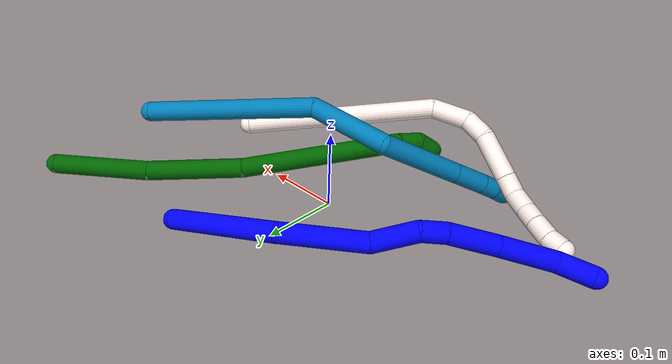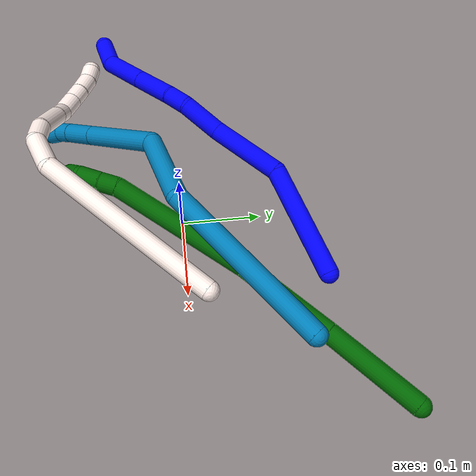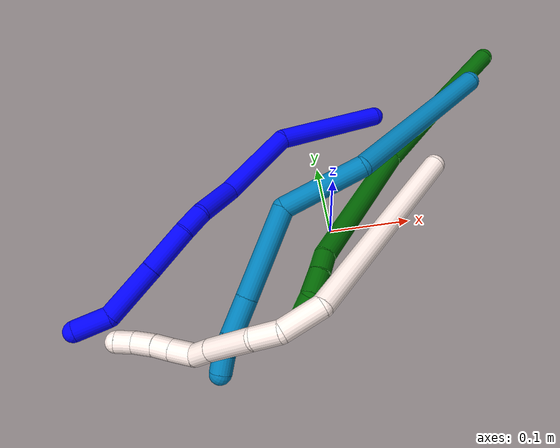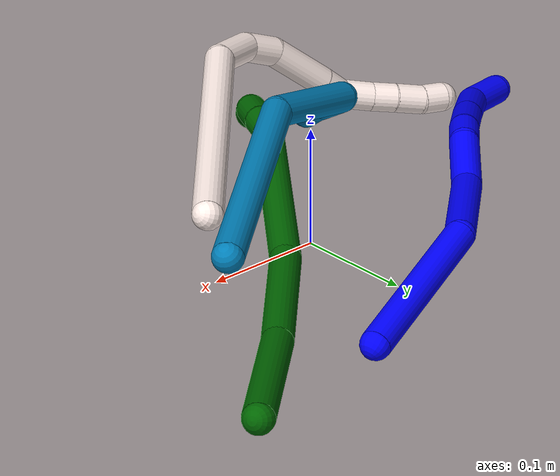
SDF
<sdf version="1.7">
 <world name="default">
  <model name="1">
   <static>0</static>
   <link name="1">
    <collision name="collision-cylinder-e_1_1_4">
     <pose>-0.033504 0.002951 0.064799 -0.045512 -0.476762 0.011061</pose>
     <geometry><cylinder><radius>0.0125</radius><length>0.146016</length></cylinder></geometry>
     <surface>
      <friction><ode><mu>1.16</mu><mu2>1.16</mu2><slip1>0</slip1><slip2>0</slip2></ode></friction>
      <contact><ode><kp>1e+06</kp><kd>1</kd><max_vel>0</max_vel><min_depth>0.001</min_depth></ode></contact>
     </surface>
    </collision>
    <visual name="visual-cylinder-e_1_1_4">
     <pose>-0.033504 0.002951 0.064799 -0.045512 -0.476762 0.011061</pose>
     <geometry><cylinder><radius>0.0125</radius><length>0.146016</length></cylinder></geometry>
     <material><ambient>0 0 1 1</ambient></material>
    </visual>
    <collision name="collision-cylinder-e_2_4_5">
     <pose>-0.105053 -0.006141 0.161777 0.35815 -0.83628 -0.160519</pose>
     <geometry><cylinder><radius>0.0125</radius><length>0.102526</length></cylinder></geometry>
     <surface>
      <friction><ode><mu>1.16</mu><mu2>1.16</mu2><slip1>0</slip1><slip2>0</slip2></ode></friction>
      <contact><ode><kp>1e+06</kp><kd>1</kd><max_vel>0</max_vel><min_depth>0.001</min_depth></ode></contact>
     </surface>
    </collision>
    <visual name="visual-cylinder-e_2_4_5">
     <pose>-0.105053 -0.006141 0.161777 0.35815 -0.83628 -0.160519</pose>
     <geometry><cylinder><radius>0.0125</radius><length>0.102526</length></cylinder></geometry>
     <material><ambient>0 0 1 1</ambient></material>
    </visual>
    <collision name="collision-cylinder-e_3_5_6">
     <pose>-0.156096 -0.029833 0.215108 0.503329 -0.493808 -0.129429</pose>
     <geometry><cylinder><radius>0.0125</radius><length>0.05485</length></cylinder></geometry>
     <surface>
      <friction><ode><mu>1.16</mu><mu2>1.16</mu2><slip1>0</slip1><slip2>0</slip2></ode></friction>
      <contact><ode><kp>1e+06</kp><kd>1</kd><max_vel>0</max_vel><min_depth>0.001</min_depth></ode></contact>
     </surface>
    </collision>
    <visual name="visual-cylinder-e_3_5_6">
     <pose>-0.156096 -0.029833 0.215108 0.503329 -0.493808 -0.129429</pose>
     <geometry><cylinder><radius>0.0125</radius><length>0.05485</length></cylinder></geometry>
     <material><ambient>0 0 1 1</ambient></material>
    </visual>
    <collision name="collision-cylinder-e_4_6_7">
     <pose>-0.180154 -0.045778 0.245358 0.441328 -0.832662 -0.197729</pose>
     <geometry><cylinder><radius>0.0125</radius><length>0.029899</length></cylinder></geometry>
     <surface>
      <friction><ode><mu>1.16</mu><mu2>1.16</mu2><slip1>0</slip1><slip2>0</slip2></ode></friction>
      <contact><ode><kp>1e+06</kp><kd>1</kd><max_vel>0</max_vel><min_depth>0.001</min_depth></ode></contact>
     </surface>
    </collision>
    <visual name="visual-cylinder-e_4_6_7">
     <pose>-0.180154 -0.045778 0.245358 0.441328 -0.832662 -0.197729</pose>
     <geometry><cylinder><radius>0.0125</radius><length>0.029899</length></cylinder></geometry>
     <material><ambient>0 0 1 1</ambient></material>
    </visual>
    <collision name="collision-cylinder-e_5_7_8">
     <pose>-0.215557 -0.055186 0.269197 0.333682 -1.0008 -0.183659</pose>
     <geometry><cylinder><radius>0.0125</radius><length>0.057833</length></cylinder></geometry>
     <surface>
      <friction><ode><mu>1.16</mu><mu2>1.16</mu2><slip1>0</slip1><slip2>0</slip2></ode></friction>
      <contact><ode><kp>1e+06</kp><kd>1</kd><max_vel>0</max_vel><min_depth>0.001</min_depth></ode></contact>
     </surface>
    </collision>
    <visual name="visual-cylinder-e_5_7_8">
     <pose>-0.215557 -0.055186 0.269197 0.333682 -1.0008 -0.183659</pose>
     <geometry><cylinder><radius>0.0125</radius><length>0.057833</length></cylinder></geometry>
     <material><ambient>0 0 1 1</ambient></material>
    </visual>
    <collision name="collision-cylinder-e_6_8_9">
     <pose>-0.268746 -0.065478 0.301105 0.293155 -1.01464 -0.163758</pose>
     <geometry><cylinder><radius>0.0125</radius><length>0.067925</length></cylinder></geometry>
     <surface>
      <friction><ode><mu>1.16</mu><mu2>1.16</mu2><slip1>0</slip1><slip2>0</slip2></ode></friction>
      <contact><ode><kp>1e+06</kp><kd>1</kd><max_vel>0</max_vel><min_depth>0.001</min_depth></ode></contact>
     </surface>
    </collision>
    <visual name="visual-cylinder-e_6_8_9">
     <pose>-0.268746 -0.065478 0.301105 0.293155 -1.01464 -0.163758</pose>
     <geometry><cylinder><radius>0.0125</radius><length>0.067925</length></cylinder></geometry>
     <material><ambient>0 0 1 1</ambient></material>
    </visual>
    <collision name="collision-cylinder-e_7_9_2">
     <pose>-0.310732 -0.066152 0.333311 -0.291126 -0.696875 0.106407</pose>
     <geometry><cylinder><radius>0.0125</radius><length>0.040951</length></cylinder></geometry>
     <surface>
      <friction><ode><mu>1.16</mu><mu2>1.16</mu2><slip1>0</slip1><slip2>0</slip2></ode></friction>
      <contact><ode><kp>1e+06</kp><kd>1</kd><max_vel>0</max_vel><min_depth>0.001</min_depth></ode></contact>
     </surface>
    </collision>
    <visual name="visual-cylinder-e_7_9_2">
     <pose>-0.310732 -0.066152 0.333311 -0.291126 -0.696875 0.106407</pose>
     <geometry><cylinder><radius>0.0125</radius><length>0.040951</length></cylinder></geometry>
     <material><ambient>0 0 1 1</ambient></material>
    </visual>
    <collision name="collision-sphere-2">
     <pose>-0.323874 -0.061645 0.348352 0 -0 0</pose>
     <geometry><sphere><radius>0.0125</radius></sphere></geometry>
     <surface>
      <friction><ode><mu>1.16</mu><mu2>1.16</mu2><slip1>0</slip1><slip2>0</slip2></ode></friction>
      <contact><ode><kp>1e+06</kp><kd>1</kd><max_vel>0</max_vel><min_depth>0.001</min_depth></ode></contact>
     </surface>
    </collision>
    <visual name="visual-sphere-2">
     <pose>-0.323874 -0.061645 0.348352 0 -0 0</pose>
     <geometry><sphere><radius>0.0125</radius></sphere></geometry>
     <material><ambient>0 0 1 1</ambient></material>
    </visual>
    <collision name="collision-sphere-9">
     <pose>-0.29759 -0.070659 0.31827 0 -0 0</pose>
     <geometry><sphere><radius>0.0125</radius></sphere></geometry>
     <surface>
      <friction><ode><mu>1.16</mu><mu2>1.16</mu2><slip1>0</slip1><slip2>0</slip2></ode></friction>
      <contact><ode><kp>1e+06</kp><kd>1</kd><max_vel>0</max_vel><min_depth>0.001</min_depth></ode></contact>
     </surface>
    </collision>
    <visual name="visual-sphere-9">
     <pose>-0.29759 -0.070659 0.31827 0 -0 0</pose>
     <geometry><sphere><radius>0.0125</radius></sphere></geometry>
     <material><ambient>0 0 1 1</ambient></material>
    </visual>
    <collision name="collision-sphere-4">
     <pose>-0.067008 0.005902 0.129599 0 -0 0</pose>
     <geometry><sphere><radius>0.0125</radius></sphere></geometry>
     <surface>
      <friction><ode><mu>1.16</mu><mu2>1.16</mu2><slip1>0</slip1><slip2>0</slip2></ode></friction>
      <contact><ode><kp>1e+06</kp><kd>1</kd><max_vel>0</max_vel><min_depth>0.001</min_depth></ode></contact>
     </surface>
    </collision>
    <visual name="visual-sphere-4">
     <pose>-0.067008 0.005902 0.129599 0 -0 0</pose>
     <geometry><sphere><radius>0.0125</radius></sphere></geometry>
     <material><ambient>0 0 1 1</ambient></material>
    </visual>
    <collision name="collision-sphere-1">
     <geometry><sphere><radius>0.0125</radius></sphere></geometry>
     <surface>
      <friction><ode><mu>1.16</mu><mu2>1.16</mu2><slip1>0</slip1><slip2>0</slip2></ode></friction>
      <contact><ode><kp>1e+06</kp><kd>1</kd><max_vel>0</max_vel><min_depth>0.001</min_depth></ode></contact>
     </surface>
    </collision>
    <visual name="visual-sphere-1">
     <geometry><sphere><radius>0.0125</radius></sphere></geometry>
     <material><ambient>0 0 1 1</ambient></material>
    </visual>
    <collision name="collision-sphere-8">
     <pose>-0.239902 -0.060296 0.28394 0 -0 0</pose>
     <geometry><sphere><radius>0.0125</radius></sphere></geometry>
     <surface>
      <friction><ode><mu>1.16</mu><mu2>1.16</mu2><slip1>0</slip1><slip2>0</slip2></ode></friction>
      <contact><ode><kp>1e+06</kp><kd>1</kd><max_vel>0</max_vel><min_depth>0.001</min_depth></ode></contact>
     </surface>
    </collision>
    <visual name="visual-sphere-8">
     <pose>-0.239902 -0.060296 0.28394 0 -0 0</pose>
     <geometry><sphere><radius>0.0125</radius></sphere></geometry>
     <material><ambient>0 0 1 1</ambient></material>
    </visual>
    <collision name="collision-sphere-5">
     <pose>-0.143097 -0.018185 0.193954 0 -0 0</pose>
     <geometry><sphere><radius>0.0125</radius></sphere></geometry>
     <surface>
      <friction><ode><mu>1.16</mu><mu2>1.16</mu2><slip1>0</slip1><slip2>0</slip2></ode></friction>
      <contact><ode><kp>1e+06</kp><kd>1</kd><max_vel>0</max_vel><min_depth>0.001</min_depth></ode></contact>
     </surface>
    </collision>
    <visual name="visual-sphere-5">
     <pose>-0.143097 -0.018185 0.193954 0 -0 0</pose>
     <geometry><sphere><radius>0.0125</radius></sphere></geometry>
     <material><ambient>0 0 1 1</ambient></material>
    </visual>
    <collision name="collision-sphere-6">
     <pose>-0.169095 -0.041481 0.236262 0 -0 0</pose>
     <geometry><sphere><radius>0.0125</radius></sphere></geometry>
     <surface>
      <friction><ode><mu>1.16</mu><mu2>1.16</mu2><slip1>0</slip1><slip2>0</slip2></ode></friction>
      <contact><ode><kp>1e+06</kp><kd>1</kd><max_vel>0</max_vel><min_depth>0.001</min_depth></ode></contact>
     </surface>
    </collision>
    <visual name="visual-sphere-6">
     <pose>-0.169095 -0.041481 0.236262 0 -0 0</pose>
     <geometry><sphere><radius>0.0125</radius></sphere></geometry>
     <material><ambient>0 0 1 1</ambient></material>
    </visual>
    <collision name="collision-sphere-7">
     <pose>-0.191212 -0.050075 0.254453 0 -0 0</pose>
     <geometry><sphere><radius>0.0125</radius></sphere></geometry>
     <surface>
      <friction><ode><mu>1.16</mu><mu2>1.16</mu2><slip1>0</slip1><slip2>0</slip2></ode></friction>
      <contact><ode><kp>1e+06</kp><kd>1</kd><max_vel>0</max_vel><min_depth>0.001</min_depth></ode></contact>
     </surface>
    </collision>
    <visual name="visual-sphere-7">
     <pose>-0.191212 -0.050075 0.254453 0 -0 0</pose>
     <geometry><sphere><radius>0.0125</radius></sphere></geometry>
     <material><ambient>0 0 1 1</ambient></material>
    </visual>
    <inertial>
     <pose>-0.146113 -0.027104 0.189706 0 -0 0</pose>
     <mass>0.5</mass>
     <inertia>
      <ixx>0.000305</ixx>
      <ixy>0</ixy>
      <ixz>0</ixz>
      <iyy>0.000408</iyy>
      <iyz>0</iyz>
      <izz>0.000298</izz>
     </inertia>
    </inertial>
   </link>
   <pose>0.093104 0.173564 0.012129 -0.501531 -0.804113 0.830199</pose>
  </model>
  <model name="6">
   <static>0</static>
   <link name="6">
    <collision name="collision-cylinder-e_1_1_4">
     <pose>-0.020443 -0.011356 -0.056076 2.94179 -0.343168 -2.09278</pose>
     <geometry><cylinder><radius>0.0125</radius><length>0.121513</length></cylinder></geometry>
     <surface>
      <friction><ode><mu>1.16</mu><mu2>1.16</mu2><slip1>0</slip1><slip2>0</slip2></ode></friction>
      <contact><ode><kp>1e+06</kp><kd>1</kd><max_vel>0</max_vel><min_depth>0.001</min_depth></ode></contact>
     </surface>
    </collision>
    <visual name="visual-cylinder-e_1_1_4">
     <pose>-0.020443 -0.011356 -0.056076 2.94179 -0.343168 -2.09278</pose>
     <geometry><cylinder><radius>0.0125</radius><length>0.121513</length></cylinder></geometry>
     <material><ambient>0 0.392157 0.003922 1</ambient></material>
    </visual>
    <collision name="collision-cylinder-e_2_4_5">
     <pose>-0.067118 -0.035432 -0.165817 2.90885 -0.443965 -2.18581</pose>
     <geometry><cylinder><radius>0.0125</radius><length>0.122145</length></cylinder></geometry>
     <surface>
      <friction><ode><mu>1.16</mu><mu2>1.16</mu2><slip1>0</slip1><slip2>0</slip2></ode></friction>
      <contact><ode><kp>1e+06</kp><kd>1</kd><max_vel>0</max_vel><min_depth>0.001</min_depth></ode></contact>
     </surface>
    </collision>
    <visual name="visual-cylinder-e_2_4_5">
     <pose>-0.067118 -0.035432 -0.165817 2.90885 -0.443965 -2.18581</pose>
     <geometry><cylinder><radius>0.0125</radius><length>0.122145</length></cylinder></geometry>
     <material><ambient>0 0.392157 0.003922 1</ambient></material>
    </visual>
    <collision name="collision-cylinder-e_3_5_6">
     <pose>-0.141021 -0.074734 -0.292597 2.7929 -0.549744 -2.02501</pose>
     <geometry><cylinder><radius>0.0125</radius><length>0.182482</length></cylinder></geometry>
     <surface>
      <friction><ode><mu>1.16</mu><mu2>1.16</mu2><slip1>0</slip1><slip2>0</slip2></ode></friction>
      <contact><ode><kp>1e+06</kp><kd>1</kd><max_vel>0</max_vel><min_depth>0.001</min_depth></ode></contact>
     </surface>
    </collision>
    <visual name="visual-cylinder-e_3_5_6">
     <pose>-0.141021 -0.074734 -0.292597 2.7929 -0.549744 -2.02501</pose>
     <geometry><cylinder><radius>0.0125</radius><length>0.182482</length></cylinder></geometry>
     <material><ambient>0 0.392157 0.003922 1</ambient></material>
    </visual>
    <collision name="collision-cylinder-e_4_6_7">
     <pose>-0.193765 -0.107401 -0.373897 2.50221 -0.461609 -1.2346</pose>
     <geometry><cylinder><radius>0.0125</radius><length>0.022783</length></cylinder></geometry>
     <surface>
      <friction><ode><mu>1.16</mu><mu2>1.16</mu2><slip1>0</slip1><slip2>0</slip2></ode></friction>
      <contact><ode><kp>1e+06</kp><kd>1</kd><max_vel>0</max_vel><min_depth>0.001</min_depth></ode></contact>
     </surface>
    </collision>
    <visual name="visual-cylinder-e_4_6_7">
     <pose>-0.193765 -0.107401 -0.373897 2.50221 -0.461609 -1.2346</pose>
     <geometry><cylinder><radius>0.0125</radius><length>0.022783</length></cylinder></geometry>
     <material><ambient>0 0.392157 0.003922 1</ambient></material>
    </visual>
    <collision name="collision-cylinder-e_5_7_8">
     <pose>-0.203865 -0.121028 -0.393517 2.55861 -0.351673 -1.06928</pose>
     <geometry><cylinder><radius>0.0125</radius><length>0.029183</length></cylinder></geometry>
     <surface>
      <friction><ode><mu>1.16</mu><mu2>1.16</mu2><slip1>0</slip1><slip2>0</slip2></ode></friction>
      <contact><ode><kp>1e+06</kp><kd>1</kd><max_vel>0</max_vel><min_depth>0.001</min_depth></ode></contact>
     </surface>
    </collision>
    <visual name="visual-cylinder-e_5_7_8">
     <pose>-0.203865 -0.121028 -0.393517 2.55861 -0.351673 -1.06928</pose>
     <geometry><cylinder><radius>0.0125</radius><length>0.029183</length></cylinder></geometry>
     <material><ambient>0 0.392157 0.003922 1</ambient></material>
    </visual>
    <collision name="collision-cylinder-e_6_8_2">
     <pose>-0.207117 -0.13352 -0.414554 2.66552 0.162769 0.64858</pose>
     <geometry><cylinder><radius>0.0125</radius><length>0.021893</length></cylinder></geometry>
     <surface>
      <friction><ode><mu>1.16</mu><mu2>1.16</mu2><slip1>0</slip1><slip2>0</slip2></ode></friction>
      <contact><ode><kp>1e+06</kp><kd>1</kd><max_vel>0</max_vel><min_depth>0.001</min_depth></ode></contact>
     </surface>
    </collision>
    <visual name="visual-cylinder-e_6_8_2">
     <pose>-0.207117 -0.13352 -0.414554 2.66552 0.162769 0.64858</pose>
     <geometry><cylinder><radius>0.0125</radius><length>0.021893</length></cylinder></geometry>
     <material><ambient>0 0.392157 0.003922 1</ambient></material>
    </visual>
    <collision name="collision-sphere-2">
     <pose>-0.205343 -0.13847 -0.424155 0 -0 0</pose>
     <geometry><sphere><radius>0.0125</radius></sphere></geometry>
     <surface>
      <friction><ode><mu>1.16</mu><mu2>1.16</mu2><slip1>0</slip1><slip2>0</slip2></ode></friction>
      <contact><ode><kp>1e+06</kp><kd>1</kd><max_vel>0</max_vel><min_depth>0.001</min_depth></ode></contact>
     </surface>
    </collision>
    <visual name="visual-sphere-2">
     <pose>-0.205343 -0.13847 -0.424155 0 -0 0</pose>
     <geometry><sphere><radius>0.0125</radius></sphere></geometry>
     <material><ambient>0 0.392157 0.003922 1</ambient></material>
    </visual>
    <collision name="collision-sphere-4">
     <pose>-0.040886 -0.022711 -0.112152 0 -0 0</pose>
     <geometry><sphere><radius>0.0125</radius></sphere></geometry>
     <surface>
      <friction><ode><mu>1.16</mu><mu2>1.16</mu2><slip1>0</slip1><slip2>0</slip2></ode></friction>
      <contact><ode><kp>1e+06</kp><kd>1</kd><max_vel>0</max_vel><min_depth>0.001</min_depth></ode></contact>
     </surface>
    </collision>
    <visual name="visual-sphere-4">
     <pose>-0.040886 -0.022711 -0.112152 0 -0 0</pose>
     <geometry><sphere><radius>0.0125</radius></sphere></geometry>
     <material><ambient>0 0.392157 0.003922 1</ambient></material>
    </visual>
    <collision name="collision-sphere-1">
     <geometry><sphere><radius>0.0125</radius></sphere></geometry>
     <surface>
      <friction><ode><mu>1.16</mu><mu2>1.16</mu2><slip1>0</slip1><slip2>0</slip2></ode></friction>
      <contact><ode><kp>1e+06</kp><kd>1</kd><max_vel>0</max_vel><min_depth>0.001</min_depth></ode></contact>
     </surface>
    </collision>
    <visual name="visual-sphere-1">
     <geometry><sphere><radius>0.0125</radius></sphere></geometry>
     <material><ambient>0 0.392157 0.003922 1</ambient></material>
    </visual>
    <collision name="collision-sphere-8">
     <pose>-0.208891 -0.128569 -0.404953 0 -0 0</pose>
     <geometry><sphere><radius>0.0125</radius></sphere></geometry>
     <surface>
      <friction><ode><mu>1.16</mu><mu2>1.16</mu2><slip1>0</slip1><slip2>0</slip2></ode></friction>
      <contact><ode><kp>1e+06</kp><kd>1</kd><max_vel>0</max_vel><min_depth>0.001</min_depth></ode></contact>
     </surface>
    </collision>
    <visual name="visual-sphere-8">
     <pose>-0.208891 -0.128569 -0.404953 0 -0 0</pose>
     <geometry><sphere><radius>0.0125</radius></sphere></geometry>
     <material><ambient>0 0.392157 0.003922 1</ambient></material>
    </visual>
    <collision name="collision-sphere-5">
     <pose>-0.09335 -0.048152 -0.219482 0 -0 0</pose>
     <geometry><sphere><radius>0.0125</radius></sphere></geometry>
     <surface>
      <friction><ode><mu>1.16</mu><mu2>1.16</mu2><slip1>0</slip1><slip2>0</slip2></ode></friction>
      <contact><ode><kp>1e+06</kp><kd>1</kd><max_vel>0</max_vel><min_depth>0.001</min_depth></ode></contact>
     </surface>
    </collision>
    <visual name="visual-sphere-5">
     <pose>-0.09335 -0.048152 -0.219482 0 -0 0</pose>
     <geometry><sphere><radius>0.0125</radius></sphere></geometry>
     <material><ambient>0 0.392157 0.003922 1</ambient></material>
    </visual>
    <collision name="collision-sphere-6">
     <pose>-0.188691 -0.101315 -0.365713 0 -0 0</pose>
     <geometry><sphere><radius>0.0125</radius></sphere></geometry>
     <surface>
      <friction><ode><mu>1.16</mu><mu2>1.16</mu2><slip1>0</slip1><slip2>0</slip2></ode></friction>
      <contact><ode><kp>1e+06</kp><kd>1</kd><max_vel>0</max_vel><min_depth>0.001</min_depth></ode></contact>
     </surface>
    </collision>
    <visual name="visual-sphere-6">
     <pose>-0.188691 -0.101315 -0.365713 0 -0 0</pose>
     <geometry><sphere><radius>0.0125</radius></sphere></geometry>
     <material><ambient>0 0.392157 0.003922 1</ambient></material>
    </visual>
    <collision name="collision-sphere-7">
     <pose>-0.198838 -0.113486 -0.382082 0 -0 0</pose>
     <geometry><sphere><radius>0.0125</radius></sphere></geometry>
     <surface>
      <friction><ode><mu>1.16</mu><mu2>1.16</mu2><slip1>0</slip1><slip2>0</slip2></ode></friction>
      <contact><ode><kp>1e+06</kp><kd>1</kd><max_vel>0</max_vel><min_depth>0.001</min_depth></ode></contact>
     </surface>
    </collision>
    <visual name="visual-sphere-7">
     <pose>-0.198838 -0.113486 -0.382082 0 -0 0</pose>
     <geometry><sphere><radius>0.0125</radius></sphere></geometry>
     <material><ambient>0 0.392157 0.003922 1</ambient></material>
    </visual>
    <inertial>
     <pose>-0.102629 -0.056495 -0.21908 0 -0 0</pose>
     <mass>0.5</mass>
     <inertia>
      <ixx>-0.000997</ixx>
      <ixy>0</ixy>
      <ixz>0</ixz>
      <iyy>-0.000172</iyy>
      <iyz>0</iyz>
      <izz>0.000571</izz>
     </inertia>
    </inertial>
   </link>
   <pose>0.26603 0.235806 0.041635 0.878159 1.0946 1.36115</pose>
  </model>
  <model name="9">
   <static>0</static>
   <link name="9">
    <collision name="collision-cylinder-e_1_1_4">
     <pose>-0.053043 -0.079733 -0.046126 2.09526 -0.522468 -0.86807</pose>
     <geometry><cylinder><radius>0.0125</radius><length>0.212589</length></cylinder></geometry>
     <surface>
      <friction><ode><mu>1.16</mu><mu2>1.16</mu2><slip1>0</slip1><slip2>0</slip2></ode></friction>
      <contact><ode><kp>1e+06</kp><kd>1</kd><max_vel>0</max_vel><min_depth>0.001</min_depth></ode></contact>
     </surface>
    </collision>
    <visual name="visual-cylinder-e_1_1_4">
     <pose>-0.053043 -0.079733 -0.046126 2.09526 -0.522468 -0.86807</pose>
     <geometry><cylinder><radius>0.0125</radius><length>0.212589</length></cylinder></geometry>
     <material><ambient>0 0.490196 0.709804 1</ambient></material>
    </visual>
    <collision name="collision-cylinder-e_2_4_5">
     <pose>-0.135893 -0.175877 -0.1283 2.71439 -0.645116 -1.99026</pose>
     <geometry><cylinder><radius>0.0125</radius><length>0.099142</length></cylinder></geometry>
     <surface>
      <friction><ode><mu>1.16</mu><mu2>1.16</mu2><slip1>0</slip1><slip2>0</slip2></ode></friction>
      <contact><ode><kp>1e+06</kp><kd>1</kd><max_vel>0</max_vel><min_depth>0.001</min_depth></ode></contact>
     </surface>
    </collision>
    <visual name="visual-cylinder-e_2_4_5">
     <pose>-0.135893 -0.175877 -0.1283 2.71439 -0.645116 -1.99026</pose>
     <geometry><cylinder><radius>0.0125</radius><length>0.099142</length></cylinder></geometry>
     <material><ambient>0 0.490196 0.709804 1</ambient></material>
    </visual>
    <collision name="collision-cylinder-e_3_5_6">
     <pose>-0.164523 -0.225074 -0.205021 2.46315 0.0225 0.063747</pose>
     <geometry><cylinder><radius>0.0125</radius><length>0.10451</length></cylinder></geometry>
     <surface>
      <friction><ode><mu>1.16</mu><mu2>1.16</mu2><slip1>0</slip1><slip2>0</slip2></ode></friction>
      <contact><ode><kp>1e+06</kp><kd>1</kd><max_vel>0</max_vel><min_depth>0.001</min_depth></ode></contact>
     </surface>
    </collision>
    <visual name="visual-cylinder-e_3_5_6">
     <pose>-0.164523 -0.225074 -0.205021 2.46315 0.0225 0.063747</pose>
     <geometry><cylinder><radius>0.0125</radius><length>0.10451</length></cylinder></geometry>
     <material><ambient>0 0.490196 0.709804 1</ambient></material>
    </visual>
    <collision name="collision-cylinder-e_4_6_7">
     <pose>-0.162939 -0.271358 -0.262366 2.46103 0.019037 0.053758</pose>
     <geometry><cylinder><radius>0.0125</radius><length>0.04291</length></cylinder></geometry>
     <surface>
      <friction><ode><mu>1.16</mu><mu2>1.16</mu2><slip1>0</slip1><slip2>0</slip2></ode></friction>
      <contact><ode><kp>1e+06</kp><kd>1</kd><max_vel>0</max_vel><min_depth>0.001</min_depth></ode></contact>
     </surface>
    </collision>
    <visual name="visual-cylinder-e_4_6_7">
     <pose>-0.162939 -0.271358 -0.262366 2.46103 0.019037 0.053758</pose>
     <geometry><cylinder><radius>0.0125</radius><length>0.04291</length></cylinder></geometry>
     <material><ambient>0 0.490196 0.709804 1</ambient></material>
    </visual>
    <collision name="collision-cylinder-e_5_7_8">
     <pose>-0.162123 -0.29111 -0.287123 2.48312 0.039892 0.116639</pose>
     <geometry><cylinder><radius>0.0125</radius><length>0.020461</length></cylinder></geometry>
     <surface>
      <friction><ode><mu>1.16</mu><mu2>1.16</mu2><slip1>0</slip1><slip2>0</slip2></ode></friction>
      <contact><ode><kp>1e+06</kp><kd>1</kd><max_vel>0</max_vel><min_depth>0.001</min_depth></ode></contact>
     </surface>
    </collision>
    <visual name="visual-cylinder-e_5_7_8">
     <pose>-0.162123 -0.29111 -0.287123 2.48312 0.039892 0.116639</pose>
     <geometry><cylinder><radius>0.0125</radius><length>0.020461</length></cylinder></geometry>
     <material><ambient>0 0.490196 0.709804 1</ambient></material>
    </visual>
    <collision name="collision-cylinder-e_6_8_2">
     <pose>-0.15936 -0.303385 -0.303092 2.48952 0.233121 0.666784</pose>
     <geometry><cylinder><radius>0.0125</radius><length>0.020389</length></cylinder></geometry>
     <surface>
      <friction><ode><mu>1.16</mu><mu2>1.16</mu2><slip1>0</slip1><slip2>0</slip2></ode></friction>
      <contact><ode><kp>1e+06</kp><kd>1</kd><max_vel>0</max_vel><min_depth>0.001</min_depth></ode></contact>
     </surface>
    </collision>
    <visual name="visual-cylinder-e_6_8_2">
     <pose>-0.15936 -0.303385 -0.303092 2.48952 0.233121 0.666784</pose>
     <geometry><cylinder><radius>0.0125</radius><length>0.020389</length></cylinder></geometry>
     <material><ambient>0 0.490196 0.709804 1</ambient></material>
    </visual>
    <collision name="collision-sphere-2">
     <pose>-0.157005 -0.309404 -0.310976 0 -0 0</pose>
     <geometry><sphere><radius>0.0125</radius></sphere></geometry>
     <surface>
      <friction><ode><mu>1.16</mu><mu2>1.16</mu2><slip1>0</slip1><slip2>0</slip2></ode></friction>
      <contact><ode><kp>1e+06</kp><kd>1</kd><max_vel>0</max_vel><min_depth>0.001</min_depth></ode></contact>
     </surface>
    </collision>
    <visual name="visual-sphere-2">
     <pose>-0.157005 -0.309404 -0.310976 0 -0 0</pose>
     <geometry><sphere><radius>0.0125</radius></sphere></geometry>
     <material><ambient>0 0.490196 0.709804 1</ambient></material>
    </visual>
    <collision name="collision-sphere-4">
     <pose>-0.106086 -0.159466 -0.092251 0 -0 0</pose>
     <geometry><sphere><radius>0.0125</radius></sphere></geometry>
     <surface>
      <friction><ode><mu>1.16</mu><mu2>1.16</mu2><slip1>0</slip1><slip2>0</slip2></ode></friction>
      <contact><ode><kp>1e+06</kp><kd>1</kd><max_vel>0</max_vel><min_depth>0.001</min_depth></ode></contact>
     </surface>
    </collision>
    <visual name="visual-sphere-4">
     <pose>-0.106086 -0.159466 -0.092251 0 -0 0</pose>
     <geometry><sphere><radius>0.0125</radius></sphere></geometry>
     <material><ambient>0 0.490196 0.709804 1</ambient></material>
    </visual>
    <collision name="collision-sphere-1">
     <geometry><sphere><radius>0.0125</radius></sphere></geometry>
     <surface>
      <friction><ode><mu>1.16</mu><mu2>1.16</mu2><slip1>0</slip1><slip2>0</slip2></ode></friction>
      <contact><ode><kp>1e+06</kp><kd>1</kd><max_vel>0</max_vel><min_depth>0.001</min_depth></ode></contact>
     </surface>
    </collision>
    <visual name="visual-sphere-1">
     <geometry><sphere><radius>0.0125</radius></sphere></geometry>
     <material><ambient>0 0.490196 0.709804 1</ambient></material>
    </visual>
    <collision name="collision-sphere-8">
     <pose>-0.161715 -0.297366 -0.295209 0 -0 0</pose>
     <geometry><sphere><radius>0.0125</radius></sphere></geometry>
     <surface>
      <friction><ode><mu>1.16</mu><mu2>1.16</mu2><slip1>0</slip1><slip2>0</slip2></ode></friction>
      <contact><ode><kp>1e+06</kp><kd>1</kd><max_vel>0</max_vel><min_depth>0.001</min_depth></ode></contact>
     </surface>
    </collision>
    <visual name="visual-sphere-8">
     <pose>-0.161715 -0.297366 -0.295209 0 -0 0</pose>
     <geometry><sphere><radius>0.0125</radius></sphere></geometry>
     <material><ambient>0 0.490196 0.709804 1</ambient></material>
    </visual>
    <collision name="collision-sphere-5">
     <pose>-0.165699 -0.192288 -0.164349 0 -0 0</pose>
     <geometry><sphere><radius>0.0125</radius></sphere></geometry>
     <surface>
      <friction><ode><mu>1.16</mu><mu2>1.16</mu2><slip1>0</slip1><slip2>0</slip2></ode></friction>
      <contact><ode><kp>1e+06</kp><kd>1</kd><max_vel>0</max_vel><min_depth>0.001</min_depth></ode></contact>
     </surface>
    </collision>
    <visual name="visual-sphere-5">
     <pose>-0.165699 -0.192288 -0.164349 0 -0 0</pose>
     <geometry><sphere><radius>0.0125</radius></sphere></geometry>
     <material><ambient>0 0.490196 0.709804 1</ambient></material>
    </visual>
    <collision name="collision-sphere-6">
     <pose>-0.163348 -0.25786 -0.245694 0 -0 0</pose>
     <geometry><sphere><radius>0.0125</radius></sphere></geometry>
     <surface>
      <friction><ode><mu>1.16</mu><mu2>1.16</mu2><slip1>0</slip1><slip2>0</slip2></ode></friction>
      <contact><ode><kp>1e+06</kp><kd>1</kd><max_vel>0</max_vel><min_depth>0.001</min_depth></ode></contact>
     </surface>
    </collision>
    <visual name="visual-sphere-6">
     <pose>-0.163348 -0.25786 -0.245694 0 -0 0</pose>
     <geometry><sphere><radius>0.0125</radius></sphere></geometry>
     <material><ambient>0 0.490196 0.709804 1</ambient></material>
    </visual>
    <collision name="collision-sphere-7">
     <pose>-0.162531 -0.284855 -0.279038 0 -0 0</pose>
     <geometry><sphere><radius>0.0125</radius></sphere></geometry>
     <surface>
      <friction><ode><mu>1.16</mu><mu2>1.16</mu2><slip1>0</slip1><slip2>0</slip2></ode></friction>
      <contact><ode><kp>1e+06</kp><kd>1</kd><max_vel>0</max_vel><min_depth>0.001</min_depth></ode></contact>
     </surface>
    </collision>
    <visual name="visual-sphere-7">
     <pose>-0.162531 -0.284855 -0.279038 0 -0 0</pose>
     <geometry><sphere><radius>0.0125</radius></sphere></geometry>
     <material><ambient>0 0.490196 0.709804 1</ambient></material>
    </visual>
    <inertial>
     <pose>-0.111003 -0.163391 -0.13453 0 -0 0</pose>
     <mass>0.5</mass>
     <inertia>
      <ixx>-6.6e-05</ixx>
      <ixy>0</ixy>
      <ixz>0</ixz>
      <iyy>-0.000643</iyy>
      <iyz>0</iyz>
      <izz>0.001132</izz>
     </inertia>
    </inertial>
   </link>
   <pose>0.198653 0.127543 0.104642 -0.368311 0.447698 -0.366185</pose>
  </model>
  <model name="11">
   <static>0</static>
   <link name="11">
    <collision name="collision-cylinder-e_1_1_4">
     <pose>-0.048292 -0.086756 0.07023 0.89028 -0.408334 -0.19692</pose>
     <geometry><cylinder><radius>0.0125</radius><length>0.243236</length></cylinder></geometry>
     <surface>
      <friction><ode><mu>1.16</mu><mu2>1.16</mu2><slip1>0</slip1><slip2>0</slip2></ode></friction>
      <contact><ode><kp>1e+06</kp><kd>1</kd><max_vel>0</max_vel><min_depth>0.001</min_depth></ode></contact>
     </surface>
    </collision>
    <visual name="visual-cylinder-e_1_1_4">
     <pose>-0.048292 -0.086756 0.07023 0.89028 -0.408334 -0.19692</pose>
     <geometry><cylinder><radius>0.0125</radius><length>0.243236</length></cylinder></geometry>
     <material><ambient>1 0.933333 0.909804 1</ambient></material>
    </visual>
    <collision name="collision-cylinder-e_2_4_5">
     <pose>-0.101066 -0.182797 0.161757 0.411149 -0.190565 -0.039852</pose>
     <geometry><cylinder><radius>0.0125</radius><length>0.047323</length></cylinder></geometry>
     <surface>
      <friction><ode><mu>1.16</mu><mu2>1.16</mu2><slip1>0</slip1><slip2>0</slip2></ode></friction>
      <contact><ode><kp>1e+06</kp><kd>1</kd><max_vel>0</max_vel><min_depth>0.001</min_depth></ode></contact>
     </surface>
    </collision>
    <visual name="visual-cylinder-e_2_4_5">
     <pose>-0.101066 -0.182797 0.161757 0.411149 -0.190565 -0.039852</pose>
     <geometry><cylinder><radius>0.0125</radius><length>0.047323</length></cylinder></geometry>
     <material><ambient>1 0.933333 0.909804 1</ambient></material>
    </visual>
    <collision name="collision-cylinder-e_3_5_6">
     <pose>-0.104593 -0.19173 0.198504 -0.022822 0.061721 -0.000705</pose>
     <geometry><cylinder><radius>0.0125</radius><length>0.030967</length></cylinder></geometry>
     <surface>
      <friction><ode><mu>1.16</mu><mu2>1.16</mu2><slip1>0</slip1><slip2>0</slip2></ode></friction>
      <contact><ode><kp>1e+06</kp><kd>1</kd><max_vel>0</max_vel><min_depth>0.001</min_depth></ode></contact>
     </surface>
    </collision>
    <visual name="visual-cylinder-e_3_5_6">
     <pose>-0.104593 -0.19173 0.198504 -0.022822 0.061721 -0.000705</pose>
     <geometry><cylinder><radius>0.0125</radius><length>0.030967</length></cylinder></geometry>
     <material><ambient>1 0.933333 0.909804 1</ambient></material>
    </visual>
    <collision name="collision-cylinder-e_4_6_7">
     <pose>-0.103716 -0.181677 0.241403 -0.339702 -0.002696 0.000462</pose>
     <geometry><cylinder><radius>0.0125</radius><length>0.058225</length></cylinder></geometry>
     <surface>
      <friction><ode><mu>1.16</mu><mu2>1.16</mu2><slip1>0</slip1><slip2>0</slip2></ode></friction>
      <contact><ode><kp>1e+06</kp><kd>1</kd><max_vel>0</max_vel><min_depth>0.001</min_depth></ode></contact>
     </surface>
    </collision>
    <visual name="visual-cylinder-e_4_6_7">
     <pose>-0.103716 -0.181677 0.241403 -0.339702 -0.002696 0.000462</pose>
     <geometry><cylinder><radius>0.0125</radius><length>0.058225</length></cylinder></geometry>
     <material><ambient>1 0.933333 0.909804 1</ambient></material>
    </visual>
    <collision name="collision-cylinder-e_5_7_8">
     <pose>-0.104481 -0.167708 0.280502 -0.351167 -0.055235 0.009802</pose>
     <geometry><cylinder><radius>0.0125</radius><length>0.024851</length></cylinder></geometry>
     <surface>
      <friction><ode><mu>1.16</mu><mu2>1.16</mu2><slip1>0</slip1><slip2>0</slip2></ode></friction>
      <contact><ode><kp>1e+06</kp><kd>1</kd><max_vel>0</max_vel><min_depth>0.001</min_depth></ode></contact>
     </surface>
    </collision>
    <visual name="visual-cylinder-e_5_7_8">
     <pose>-0.104481 -0.167708 0.280502 -0.351167 -0.055235 0.009802</pose>
     <geometry><cylinder><radius>0.0125</radius><length>0.024851</length></cylinder></geometry>
     <material><ambient>1 0.933333 0.909804 1</ambient></material>
    </visual>
    <collision name="collision-cylinder-e_6_8_9">
     <pose>-0.099091 -0.161668 0.30455 -0.141981 0.451664 -0.032672</pose>
     <geometry><cylinder><radius>0.0125</radius><length>0.027843</length></cylinder></geometry>
     <surface>
      <friction><ode><mu>1.16</mu><mu2>1.16</mu2><slip1>0</slip1><slip2>0</slip2></ode></friction>
      <contact><ode><kp>1e+06</kp><kd>1</kd><max_vel>0</max_vel><min_depth>0.001</min_depth></ode></contact>
     </surface>
    </collision>
    <visual name="visual-cylinder-e_6_8_9">
     <pose>-0.099091 -0.161668 0.30455 -0.141981 0.451664 -0.032672</pose>
     <geometry><cylinder><radius>0.0125</radius><length>0.027843</length></cylinder></geometry>
     <material><ambient>1 0.933333 0.909804 1</ambient></material>
    </visual>
    <collision name="collision-cylinder-e_7_9_10">
     <pose>-0.087961 -0.158802 0.326288 -0.11655 0.493203 -0.02937</pose>
     <geometry><cylinder><radius>0.0125</radius><length>0.021348</length></cylinder></geometry>
     <surface>
      <friction><ode><mu>1.16</mu><mu2>1.16</mu2><slip1>0</slip1><slip2>0</slip2></ode></friction>
      <contact><ode><kp>1e+06</kp><kd>1</kd><max_vel>0</max_vel><min_depth>0.001</min_depth></ode></contact>
     </surface>
    </collision>
    <visual name="visual-cylinder-e_7_9_10">
     <pose>-0.087961 -0.158802 0.326288 -0.11655 0.493203 -0.02937</pose>
     <geometry><cylinder><radius>0.0125</radius><length>0.021348</length></cylinder></geometry>
     <material><ambient>1 0.933333 0.909804 1</ambient></material>
    </visual>
    <collision name="collision-cylinder-e_8_10_11">
     <pose>-0.077892 -0.156614 0.347251 -0.093901 0.40569 -0.019327</pose>
     <geometry><cylinder><radius>0.0125</radius><length>0.025417</length></cylinder></geometry>
     <surface>
      <friction><ode><mu>1.16</mu><mu2>1.16</mu2><slip1>0</slip1><slip2>0</slip2></ode></friction>
      <contact><ode><kp>1e+06</kp><kd>1</kd><max_vel>0</max_vel><min_depth>0.001</min_depth></ode></contact>
     </surface>
    </collision>
    <visual name="visual-cylinder-e_8_10_11">
     <pose>-0.077892 -0.156614 0.347251 -0.093901 0.40569 -0.019327</pose>
     <geometry><cylinder><radius>0.0125</radius><length>0.025417</length></cylinder></geometry>
     <material><ambient>1 0.933333 0.909804 1</ambient></material>
    </visual>
    <collision name="collision-cylinder-e_9_11_2">
     <pose>-0.06923 -0.156776 0.36853 0.129469 0.358444 0.023487</pose>
     <geometry><cylinder><radius>0.0125</radius><length>0.020789</length></cylinder></geometry>
     <surface>
      <friction><ode><mu>1.16</mu><mu2>1.16</mu2><slip1>0</slip1><slip2>0</slip2></ode></friction>
      <contact><ode><kp>1e+06</kp><kd>1</kd><max_vel>0</max_vel><min_depth>0.001</min_depth></ode></contact>
     </surface>
    </collision>
    <visual name="visual-cylinder-e_9_11_2">
     <pose>-0.06923 -0.156776 0.36853 0.129469 0.358444 0.023487</pose>
     <geometry><cylinder><radius>0.0125</radius><length>0.020789</length></cylinder></geometry>
     <material><ambient>1 0.933333 0.909804 1</ambient></material>
    </visual>
    <collision name="collision-sphere-2">
     <pose>-0.065583 -0.158033 0.378182 0 -0 0</pose>
     <geometry><sphere><radius>0.0125</radius></sphere></geometry>
     <surface>
      <friction><ode><mu>1.16</mu><mu2>1.16</mu2><slip1>0</slip1><slip2>0</slip2></ode></friction>
      <contact><ode><kp>1e+06</kp><kd>1</kd><max_vel>0</max_vel><min_depth>0.001</min_depth></ode></contact>
     </surface>
    </collision>
    <visual name="visual-sphere-2">
     <pose>-0.065583 -0.158033 0.378182 0 -0 0</pose>
     <geometry><sphere><radius>0.0125</radius></sphere></geometry>
     <material><ambient>1 0.933333 0.909804 1</ambient></material>
    </visual>
    <collision name="collision-sphere-11">
     <pose>-0.072876 -0.155519 0.358877 0 -0 0</pose>
     <geometry><sphere><radius>0.0125</radius></sphere></geometry>
     <surface>
      <friction><ode><mu>1.16</mu><mu2>1.16</mu2><slip1>0</slip1><slip2>0</slip2></ode></friction>
      <contact><ode><kp>1e+06</kp><kd>1</kd><max_vel>0</max_vel><min_depth>0.001</min_depth></ode></contact>
     </surface>
    </collision>
    <visual name="visual-sphere-11">
     <pose>-0.072876 -0.155519 0.358877 0 -0 0</pose>
     <geometry><sphere><radius>0.0125</radius></sphere></geometry>
     <material><ambient>1 0.933333 0.909804 1</ambient></material>
    </visual>
    <collision name="collision-sphere-10">
     <pose>-0.082907 -0.157709 0.335626 0 -0 0</pose>
     <geometry><sphere><radius>0.0125</radius></sphere></geometry>
     <surface>
      <friction><ode><mu>1.16</mu><mu2>1.16</mu2><slip1>0</slip1><slip2>0</slip2></ode></friction>
      <contact><ode><kp>1e+06</kp><kd>1</kd><max_vel>0</max_vel><min_depth>0.001</min_depth></ode></contact>
     </surface>
    </collision>
    <visual name="visual-sphere-10">
     <pose>-0.082907 -0.157709 0.335626 0 -0 0</pose>
     <geometry><sphere><radius>0.0125</radius></sphere></geometry>
     <material><ambient>1 0.933333 0.909804 1</ambient></material>
    </visual>
    <collision name="collision-sphere-9">
     <pose>-0.093015 -0.159896 0.31695 0 -0 0</pose>
     <geometry><sphere><radius>0.0125</radius></sphere></geometry>
     <surface>
      <friction><ode><mu>1.16</mu><mu2>1.16</mu2><slip1>0</slip1><slip2>0</slip2></ode></friction>
      <contact><ode><kp>1e+06</kp><kd>1</kd><max_vel>0</max_vel><min_depth>0.001</min_depth></ode></contact>
     </surface>
    </collision>
    <visual name="visual-sphere-9">
     <pose>-0.093015 -0.159896 0.31695 0 -0 0</pose>
     <geometry><sphere><radius>0.0125</radius></sphere></geometry>
     <material><ambient>1 0.933333 0.909804 1</ambient></material>
    </visual>
    <collision name="collision-sphere-4">
     <pose>-0.096584 -0.173512 0.14046 0 -0 0</pose>
     <geometry><sphere><radius>0.0125</radius></sphere></geometry>
     <surface>
      <friction><ode><mu>1.16</mu><mu2>1.16</mu2><slip1>0</slip1><slip2>0</slip2></ode></friction>
      <contact><ode><kp>1e+06</kp><kd>1</kd><max_vel>0</max_vel><min_depth>0.001</min_depth></ode></contact>
     </surface>
    </collision>
    <visual name="visual-sphere-4">
     <pose>-0.096584 -0.173512 0.14046 0 -0 0</pose>
     <geometry><sphere><radius>0.0125</radius></sphere></geometry>
     <material><ambient>1 0.933333 0.909804 1</ambient></material>
    </visual>
    <collision name="collision-sphere-1">
     <geometry><sphere><radius>0.0125</radius></sphere></geometry>
     <surface>
      <friction><ode><mu>1.16</mu><mu2>1.16</mu2><slip1>0</slip1><slip2>0</slip2></ode></friction>
      <contact><ode><kp>1e+06</kp><kd>1</kd><max_vel>0</max_vel><min_depth>0.001</min_depth></ode></contact>
     </surface>
    </collision>
    <visual name="visual-sphere-1">
     <geometry><sphere><radius>0.0125</radius></sphere></geometry>
     <material><ambient>1 0.933333 0.909804 1</ambient></material>
    </visual>
    <collision name="collision-sphere-8">
     <pose>-0.105167 -0.16344 0.292151 0 -0 0</pose>
     <geometry><sphere><radius>0.0125</radius></sphere></geometry>
     <surface>
      <friction><ode><mu>1.16</mu><mu2>1.16</mu2><slip1>0</slip1><slip2>0</slip2></ode></friction>
      <contact><ode><kp>1e+06</kp><kd>1</kd><max_vel>0</max_vel><min_depth>0.001</min_depth></ode></contact>
     </surface>
    </collision>
    <visual name="visual-sphere-8">
     <pose>-0.105167 -0.16344 0.292151 0 -0 0</pose>
     <geometry><sphere><radius>0.0125</radius></sphere></geometry>
     <material><ambient>1 0.933333 0.909804 1</ambient></material>
    </visual>
    <collision name="collision-sphere-5">
     <pose>-0.105548 -0.192082 0.183054 0 -0 0</pose>
     <geometry><sphere><radius>0.0125</radius></sphere></geometry>
     <surface>
      <friction><ode><mu>1.16</mu><mu2>1.16</mu2><slip1>0</slip1><slip2>0</slip2></ode></friction>
      <contact><ode><kp>1e+06</kp><kd>1</kd><max_vel>0</max_vel><min_depth>0.001</min_depth></ode></contact>
     </surface>
    </collision>
    <visual name="visual-sphere-5">
     <pose>-0.105548 -0.192082 0.183054 0 -0 0</pose>
     <geometry><sphere><radius>0.0125</radius></sphere></geometry>
     <material><ambient>1 0.933333 0.909804 1</ambient></material>
    </visual>
    <collision name="collision-sphere-6">
     <pose>-0.103638 -0.191377 0.213954 0 -0 0</pose>
     <geometry><sphere><radius>0.0125</radius></sphere></geometry>
     <surface>
      <friction><ode><mu>1.16</mu><mu2>1.16</mu2><slip1>0</slip1><slip2>0</slip2></ode></friction>
      <contact><ode><kp>1e+06</kp><kd>1</kd><max_vel>0</max_vel><min_depth>0.001</min_depth></ode></contact>
     </surface>
    </collision>
    <visual name="visual-sphere-6">
     <pose>-0.103638 -0.191377 0.213954 0 -0 0</pose>
     <geometry><sphere><radius>0.0125</radius></sphere></geometry>
     <material><ambient>1 0.933333 0.909804 1</ambient></material>
    </visual>
    <collision name="collision-sphere-7">
     <pose>-0.103795 -0.171976 0.268852 0 -0 0</pose>
     <geometry><sphere><radius>0.0125</radius></sphere></geometry>
     <surface>
      <friction><ode><mu>1.16</mu><mu2>1.16</mu2><slip1>0</slip1><slip2>0</slip2></ode></friction>
      <contact><ode><kp>1e+06</kp><kd>1</kd><max_vel>0</max_vel><min_depth>0.001</min_depth></ode></contact>
     </surface>
    </collision>
    <visual name="visual-sphere-7">
     <pose>-0.103795 -0.171976 0.268852 0 -0 0</pose>
     <geometry><sphere><radius>0.0125</radius></sphere></geometry>
     <material><ambient>1 0.933333 0.909804 1</ambient></material>
    </visual>
    <inertial>
     <pose>-0.072919 -0.131134 0.167687 0 -0 0</pose>
     <mass>0.5</mass>
     <inertia>
      <ixx>0.000908</ixx>
      <ixy>0</ixy>
      <ixz>0</ixz>
      <iyy>0.000631</iyy>
      <iyz>0</iyz>
      <izz>0.001367</izz>
     </inertia>
    </inertial>
   </link>
   <pose>0.127889 0.022984 0.076932 -2.05361 -0.564453 1.82257</pose>
  </model>
 </world>
</sdf>
